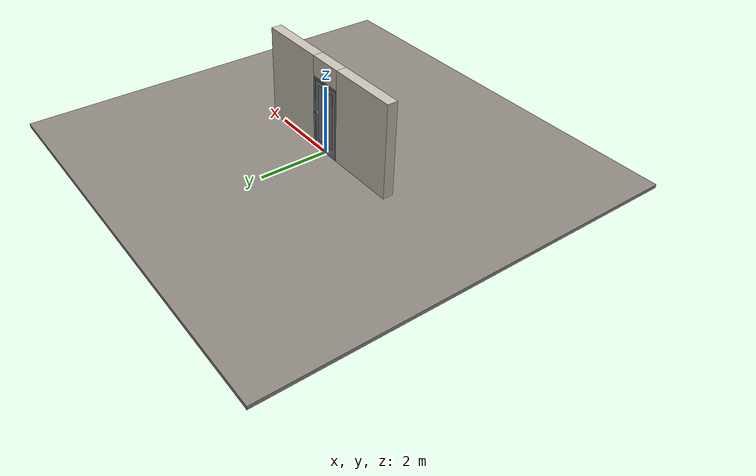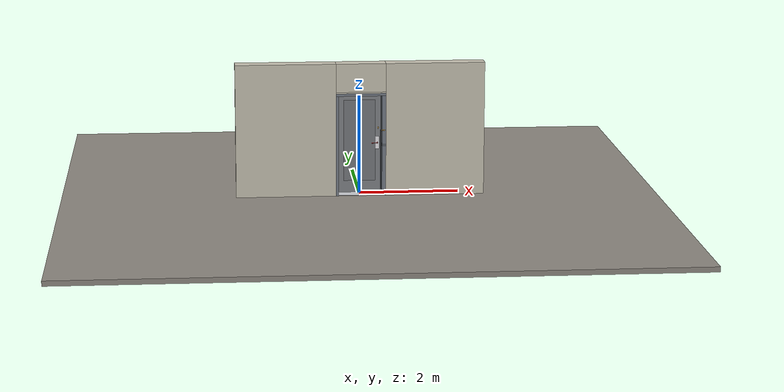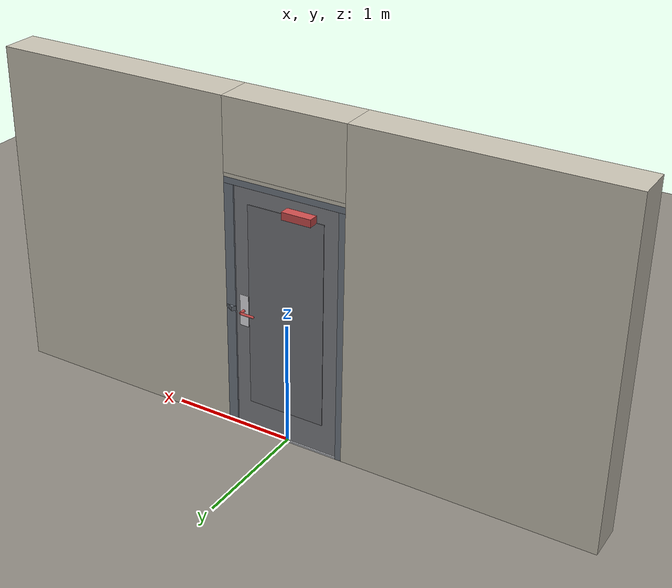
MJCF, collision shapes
<?xml version="1.0" ?>
<mujoco model="db0481_swing_single_simple">
  <compiler angle="radian" meshdir="../../hardware" texturedir="../../textures" autolimits="true" inertiafromgeom="false"/>
  <option timestep="0.002" integrator="implicitfast" cone="elliptic" impratio="10" noslip_iterations="3">
    <flag multiccd="enable"/>
  </option>
  <size memory="16M"/>
  <default>
    <geom condim="4" solref="0.005 1" solimp="0.95 0.99 0.001"/>
    <joint solreflimit="0.005 1" solimplimit="0.95 0.99 0.001"/>
    <tendon solreflimit="0.005 1"/>
    <equality solref="0.002 1"/>
  </default>
  <visual>
    <headlight ambient="0.4 0.4 0.4" diffuse="0.7 0.7 0.7" specular="0.2 0.2 0.2"/>
    <quality shadowsize="4096"/>
    <map znear="0.01" zfar="60"/>
  </visual>
  <asset>
    <mesh name="card_reader_38c0bdb077" file="card_reader_38c0bdb077.obj"/>
    <mesh name="closer_body_b226fdb10b" file="closer_body_b226fdb10b.obj"/>
    <mesh name="hinge_e22b26c0c1" file="hinge_e22b26c0c1.obj"/>
    <mesh name="hinge_jamb_e1d088f8dc" file="hinge_jamb_e1d088f8dc.obj"/>
    <mesh name="lever_56c65af20a" file="lever_56c65af20a.obj"/>
    <material name="mat_floor" rgba="0.55 0.53 0.5 1" specular="0.2" shininess="0.15" reflectance="0"/>
    <material name="mat_wall" rgba="0.78 0.76 0.7 1" specular="0.2" shininess="0.1" reflectance="0"/>
    <material name="mat_leaf" rgba="0.5 0.51 0.53 1" specular="0.2" shininess="0.61" reflectance="0"/>
    <material name="mat_leaf_panel" rgba="0.46 0.469 0.488 1" specular="0.2" shininess="0.61" reflectance="0"/>
    <material name="mat_hinge" rgba="0.65 0.66 0.68 1" specular="0.74" shininess="0.5" reflectance="0.36"/>
    <material name="mat_op_chrome" rgba="0.9 0.9 0.92 1" specular="0.8" shininess="0.9" reflectance="0.4"/>
    <material name="mat_trim" rgba="0.85 0.66 0.3 1" specular="0.8" shininess="0.75" reflectance="0.4"/>
    <material name="mat_reader" rgba="0.05 0.05 0.05 1" specular="0.38" shininess="0.3" reflectance="0.12"/>
    <material name="mat_bolt" rgba="0.75 0.76 0.77 1" specular="0.8" shininess="0.65" reflectance="0.4"/>
    <material name="mat_chain" rgba="0.85 0.66 0.3 1" specular="0.8" shininess="0.75" reflectance="0.4"/>
    <material name="mat_frame" rgba="0.45 0.48 0.52 1" specular="0.32" shininess="0.6" reflectance="0.08"/>
    <material name="mat_threshold" rgba="0.8 0.81 0.83 1" specular="0.8" shininess="0.6" reflectance="0.4"/>
    <material name="mat_closer" rgba="0.22 0.17 0.13 1" specular="0.8" shininess="0.6" reflectance="0.4"/>
    <material name="mat_peephole" rgba="0.85 0.66 0.3 1" specular="0.8" shininess="0.75" reflectance="0.4"/>
    <texture name="skybox" type="skybox" builtin="gradient" rgb1="0.6 0.7 0.85" rgb2="0.9 0.92 0.95" width="256" height="256"/>
  </asset>
  <worldbody>
    <light name="sun" pos="1.5 -2.5 4" dir="-0.3 0.5 -0.8" directional="true" diffuse="0.8 0.8 0.8" specular="0.3 0.3 0.3" castshadow="true"/>
    <light name="fill" pos="-1.5 2.5 3" dir="0.3 -0.5 -0.7" directional="true" diffuse="0.35 0.35 0.4" castshadow="false"/>
    <camera name="robot_view" pos="0 -2.663187 1.734312" xyaxes="1 0 0 0 0.26963 0.962964" fovy="52"/>
    <camera name="far_view" pos="0 2.421187 1.734312" xyaxes="-1 0 0 0 -0.26963 0.962964" fovy="52"/>
    <camera name="iso" pos="1.932062 -2.256438 2.141063" xyaxes="0.741536 0.670913 0 -0.242917 0.268487 0.932151" fovy="46"/>
    <camera name="detail_handle" pos="0.445 -0.877 1.32" xyaxes="0.97561 0.219512 0 -0.070934 0.315262 0.94635" fovy="38"/>
    <geom name="floor" type="box" size="6 6 0.05" pos="0 0 -0.05" material="mat_floor" group="0" contype="1" conaffinity="1" friction="0.8 0.005 0.0001" density="2400"/>
    <geom name="wall_left" type="box" size="1.007 0.15 1.35" pos="-1.493 -0.121 1.35" material="mat_wall" group="0" contype="1" conaffinity="1" friction="0.6 0.005 0.0001" density="800"/>
    <geom name="wall_right" type="box" size="0.992 0.15 1.35" pos="1.508 -0.121 1.35" material="mat_wall" group="0" contype="1" conaffinity="1" friction="0.6 0.005 0.0001" density="800"/>
    <geom name="wall_header" type="box" size="0.501 0.15 0.2875" pos="0.015 -0.121 2.4125" material="mat_wall" group="0" contype="1" conaffinity="1" friction="0.6 0.005 0.0001" density="800"/>
    <geom name="hinge_0_jamb" type="mesh" mesh="hinge_jamb_e1d088f8dc" pos="-0.433 0.029 0.267" quat="0 1 0 0" material="mat_hinge" group="1" contype="0" conaffinity="0" density="7850"/>
    <geom name="hinge_1_jamb" type="mesh" mesh="hinge_jamb_e1d088f8dc" pos="-0.433 0.029 1.029" quat="0 1 0 0" material="mat_hinge" group="1" contype="0" conaffinity="0" density="7850"/>
    <geom name="hinge_2_jamb" type="mesh" mesh="hinge_jamb_e1d088f8dc" pos="-0.433 0.029 1.861" quat="0 1 0 0" material="mat_hinge" group="1" contype="0" conaffinity="0" density="7850"/>
    <geom name="leaf_chain_track" type="box" size="0.035 0.005 0.01" pos="0.466 -0.276 1.34" material="mat_chain" group="1" contype="0" conaffinity="0" density="8500"/>
    <geom name="jamb_hinge" type="box" size="0.025 0.15 1.0225" pos="-0.461 -0.121 1.0225" material="mat_frame" group="0" contype="1" conaffinity="1" friction="0.6 0.005 0.0001" density="300"/>
    <geom name="strike_1040_wall_n" type="box" size="0.04 0.13075 0.018" pos="0.476 -0.14025 1.04" material="mat_frame" group="0" contype="1" conaffinity="1" friction="0.6 0.005 0.0001" density="300"/>
    <geom name="strike_1040_wall_p" type="box" size="0.04 0.008 0.018" pos="0.476 0.0175 1.04" material="mat_frame" group="0" contype="1" conaffinity="1" friction="0.6 0.005 0.0001" density="300"/>
    <geom name="strike_1040_ramp" type="box" size="0.04 0.018028 0.018" pos="0.479282 0.018312 1.04" quat="0.957092 0 0 -0.289784" material="mat_frame" group="0" contype="1" conaffinity="1" friction="0.12 0.005 0.0001" density="300"/>
    <geom name="strike_1040_back" type="box" size="0.0285 0.0095 0.018" pos="0.4875 0 1.04" material="mat_frame" group="0" contype="1" conaffinity="1" friction="0.6 0.005 0.0001" density="300"/>
    <geom name="jamb_strike_0" type="box" size="0.04 0.15 0.511" pos="0.476 -0.121 0.511" material="mat_frame" group="0" contype="1" conaffinity="1" friction="0.6 0.005 0.0001" density="300"/>
    <geom name="jamb_strike_1" type="box" size="0.04 0.15 0.4935" pos="0.476 -0.121 1.5515" material="mat_frame" group="0" contype="1" conaffinity="1" friction="0.6 0.005 0.0001" density="300"/>
    <geom name="jamb_head" type="box" size="0.501 0.15 0.025" pos="0.015 -0.121 2.07" material="mat_frame" group="0" contype="1" conaffinity="1" friction="0.6 0.005 0.0001" density="300"/>
    <geom name="head_stud" type="box" size="0.501 0.15 0.015" pos="0.015 -0.121 2.11" material="mat_wall" group="0" contype="1" conaffinity="1" friction="0.6 0.005 0.0001" density="500"/>
    <geom name="stop_hinge" type="box" size="0.0055 0.016 1.0225" pos="-0.4305 -0.0385 1.0225" material="mat_frame" group="0" contype="1" conaffinity="1" friction="0.6 0.005 0.0001" density="300"/>
    <geom name="stop_strike" type="box" size="0.0055 0.016 1.0225" pos="0.4305 -0.0385 1.0225" material="mat_frame" group="0" contype="1" conaffinity="1" friction="0.6 0.005 0.0001" density="300"/>
    <geom name="stop_head" type="box" size="0.436 0.016 0.0055" pos="0 -0.0385 2.0395" material="mat_frame" group="0" contype="1" conaffinity="1" friction="0.6 0.005 0.0001" density="300"/>
    <geom name="threshold" type="box" size="0.486 0.15 0.0065" pos="0 -0.121 0.0065" material="mat_threshold" group="0" contype="1" conaffinity="1" friction="0.5 0.005 0.0001" density="2700"/>
    <site name="approach_point" pos="0 -1.5 0" quat="1 0 0 0" size="0.05" rgba="0.2 0.9 0.2 0.5" group="4"/>
    <site name="goal_point" pos="0 1.5 0" quat="1 0 0 0" size="0.05" rgba="0.2 0.9 0.2 0.5" group="4"/>
    <site name="door_plane_center" pos="0 0 1.0225" quat="1 0 0 0" size="0.02" rgba="0.2 0.9 0.2 0.5" group="4"/>
    <body name="leaf" pos="-0.436 0 0">
      <inertial pos="0.419114 0.008788 1.15239" mass="56.242153" quat="-0.482501 0.496466 0.511562 0.508939" diaginertia="3.353537326 21.803597014 25.096111711"/>
      <joint name="leaf_hinge" type="hinge" axis="0 0 1" pos="0.003 0.029 0" limited="true" range="0 0.104904" damping="10.204501" frictionloss="0.886524" stiffness="11.681973" springref="-1.849003" armature="0.02"/>
      <geom name="leaf_slab" type="box" size="0.432 0.022 1.012" pos="0.435 0 1.029" material="mat_leaf" group="0" contype="1" conaffinity="1" friction="0.4 0.005 0.0001" density="1"/>
      <geom name="leaf_panel_0_n" type="box" size="0.31696 0.003 0.83008" pos="0.435 -0.025 1.08972" material="mat_leaf_panel" group="1" contype="0" conaffinity="0" density="1"/>
      <geom name="leaf_panel_0_p" type="box" size="0.31696 0.003 0.83008" pos="0.435 0.025 1.08972" material="mat_leaf_panel" group="1" contype="0" conaffinity="0" density="1"/>
      <geom name="hinge_0" type="mesh" mesh="hinge_e22b26c0c1" pos="0.003 0.029 0.267" quat="0 1 0 0" material="mat_hinge" group="1" contype="0" conaffinity="0" density="7850"/>
      <geom name="hinge_1" type="mesh" mesh="hinge_e22b26c0c1" pos="0.003 0.029 1.029" quat="0 1 0 0" material="mat_hinge" group="1" contype="0" conaffinity="0" density="7850"/>
      <geom name="hinge_2" type="mesh" mesh="hinge_e22b26c0c1" pos="0.003 0.029 1.861" quat="0 1 0 0" material="mat_hinge" group="1" contype="0" conaffinity="0" density="7850"/>
      <geom name="leaf_handle_escutcheon_n" type="box" size="0.0375 0.0015 0.13" pos="0.797 -0.0235 1.04" material="mat_op_chrome" group="1" contype="0" conaffinity="0" density="3000"/>
      <geom name="leaf_handle_escutcheon_p" type="box" size="0.0375 0.0015 0.13" pos="0.797 0.0235 1.04" material="mat_op_chrome" group="1" contype="0" conaffinity="0" density="3000"/>
      <geom name="leaf_handle_reader" type="mesh" mesh="card_reader_38c0bdb077" pos="0.797 0.022 1.2" quat="0 0 0.707107 0.707107" material="mat_reader" group="1" contype="0" conaffinity="0" density="2000"/>
      <geom name="leaf_latch_bolt_faceplate" type="box" size="0.0006 0.014 0.028" pos="0.8664 0 1.04" material="mat_bolt" group="1" contype="0" conaffinity="0" density="8500"/>
      <geom name="leaf_chain_plate" type="box" size="0.012 0.002 0.02" pos="0.817 -0.024 1.34" material="mat_chain" group="1" contype="0" conaffinity="0" density="8500"/>
      <geom name="closer_body" type="mesh" mesh="closer_body_b226fdb10b" pos="0.3 0.022 1.944" quat="-0.707107 0.707107 0 0" material="mat_closer" group="1" contype="0" conaffinity="0" density="2000"/>
      <geom name="closer_body_col" type="box" size="0.12 0.04 0.03" pos="0.3 0.062 1.944" material="mat_closer" group="3" contype="1" conaffinity="1" rgba="0.8 0.3 0.3 0.25" friction="0.6 0.005 0.0001" density="2000"/>
      <site name="leaf_edge_mid" pos="0.867 0 1.012" quat="1 0 0 0" size="0.02" rgba="0.2 0.9 0.2 0.5" group="4"/>
      <body name="leaf_handle" pos="0.797 0 1.04">
        <inertial pos="-0.038009 0 0" mass="0.678697" quat="0 0.707107 0.707107 0" diaginertia="0.001178914 0.003248695 0.004390737"/>
        <joint name="leaf_handle_hinge" type="hinge" axis="0 -1 0" limited="true" range="0 0.87" damping="0.231314" frictionloss="0.06" stiffness="1.1" springref="-0.454545" armature="0.01"/>
        <geom name="leaf_handle_lever_n" type="mesh" mesh="lever_56c65af20a" pos="0 -0.022 0" quat="0.707107 0.707107 0 0" material="mat_op_chrome" group="1" contype="0" conaffinity="0" density="3000"/>
        <geom name="leaf_handle_lever_col_n" type="capsule" size="0.0095 0.0505" pos="-0.06 -0.077 0" quat="0.707107 0 -0.707107 0" material="mat_op_chrome" group="3" contype="1" conaffinity="1" rgba="0.8 0.3 0.3 0.25" friction="0.7 0.01 0.0001" density="3000"/>
        <geom name="leaf_handle_hub_col_n" type="cylinder" size="0.012 0.022" pos="0 -0.052 0" quat="0.707107 -0.707107 0 0" material="mat_op_chrome" group="3" contype="1" conaffinity="1" rgba="0.8 0.3 0.3 0.25" friction="0.6 0.005 0.0001" density="3000"/>
        <geom name="leaf_handle_lever_p" type="mesh" mesh="lever_56c65af20a" pos="0 0.022 0" quat="-0.707107 0.707107 0 0" material="mat_op_chrome" group="1" contype="0" conaffinity="0" density="3000"/>
        <geom name="leaf_handle_lever_col_p" type="capsule" size="0.0095 0.0505" pos="-0.06 0.077 0" quat="0.707107 0 -0.707107 0" material="mat_op_chrome" group="3" contype="1" conaffinity="1" rgba="0.8 0.3 0.3 0.25" friction="0.7 0.01 0.0001" density="3000"/>
        <geom name="leaf_handle_hub_col_p" type="cylinder" size="0.012 0.022" pos="0 0.052 0" quat="0.707107 -0.707107 0 0" material="mat_op_chrome" group="3" contype="1" conaffinity="1" rgba="0.8 0.3 0.3 0.25" friction="0.6 0.005 0.0001" density="3000"/>
        <site name="leaf_handle_grip_n" pos="-0.096 -0.077 0" quat="1 0 0 0" size="0.012" rgba="0.2 0.9 0.2 0.5" group="4"/>
        <site name="leaf_handle_grip_p" pos="-0.096 0.077 0" quat="1 0 0 0" size="0.012" rgba="0.2 0.9 0.2 0.5" group="4"/>
      </body>
      <body name="leaf_latch_bolt" pos="0.867 0 1.04">
        <inertial pos="-0.0055 0 0" mass="0.074627" quat="0.92388 -0.382683 0 0" diaginertia="0.000002271 0.000013255 0.000013255"/>
        <joint name="leaf_latch_bolt_slide" type="slide" axis="-1 0 0" limited="true" range="0 0.019" damping="2" frictionloss="0.3" stiffness="550" springref="-0.01" armature="0.1"/>
        <geom name="leaf_latch_bolt_capsule" type="capsule" size="0.008 0.0165" pos="-0.0055 0 0" quat="0.707107 0 0.707107 0" material="mat_bolt" group="0" contype="1" conaffinity="1" friction="0.2 0.005 0.0001" density="8500"/>
      </body>
    </body>
  </worldbody>
  <tendon>
    <fixed name="leaf_latch_bolt_coupling" limited="true" range="0 10">
      <joint joint="leaf_latch_bolt_slide" coef="1"/>
      <joint joint="leaf_handle_hinge" coef="-0.023457"/>
    </fixed>
  </tendon>
  <sensor>
    <jointpos name="leaf_hinge_pos" joint="leaf_hinge"/>
    <jointvel name="leaf_hinge_vel" joint="leaf_hinge"/>
    <jointpos name="leaf_handle_hinge_pos" joint="leaf_handle_hinge"/>
    <jointvel name="leaf_handle_hinge_vel" joint="leaf_handle_hinge"/>
    <jointpos name="leaf_latch_bolt_slide_pos" joint="leaf_latch_bolt_slide"/>
    <jointvel name="leaf_latch_bolt_slide_vel" joint="leaf_latch_bolt_slide"/>
  </sensor>
</mujoco>
